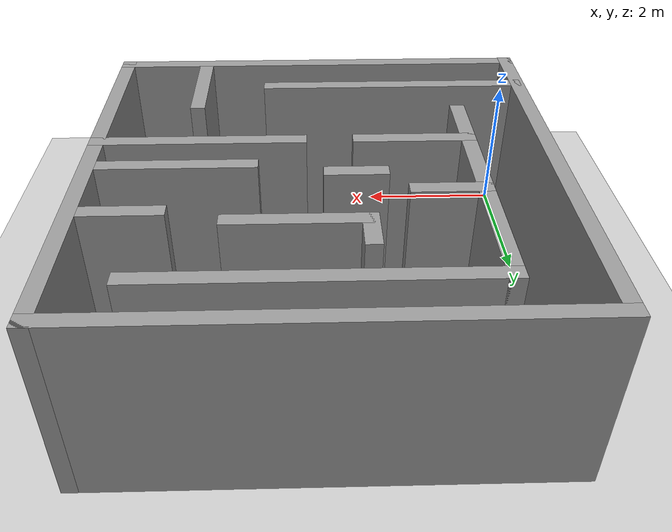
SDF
<sdf version='1.4'>
  <world name='default'>
    <!-- A global light source -->
    <include>
      <uri>model://sun</uri>
    </include>

    <!-- A ground plane -->
    <include>
      <uri>model://ground_plane</uri>
    </include>

    <physics type="ode">
      <real_time_update_rate>1000.0</real_time_update_rate>
      <max_step_size>0.001</max_step_size>
      <real_time_factor>1</real_time_factor>
      <ode>
        <solver>
          <type>quick</type>
          <iters>150</iters>
          <precon_iters>0</precon_iters>
          <sor>1.400000</sor>
          <use_dynamic_moi_rescaling>1</use_dynamic_moi_rescaling>
        </solver>
        <constraints>
          <cfm>0.00001</cfm>
          <erp>0.2</erp>
          <contact_max_correcting_vel>2000.000000</contact_max_correcting_vel>
          <contact_surface_layer>0.01000</contact_surface_layer>
        </constraints>
      </ode>
    </physics>

    <!-- A turtlebot symbol -->
    <include>
      <uri>model://Maze2</uri>
    </include>

    <scene>
      <ambient>0.4 0.4 0.4 1</ambient>
      <background>0.7 0.7 0.7 1</background>
      <shadows>true</shadows>
    </scene>

    <gui fullscreen='0'>
      <camera name='user_camera'>
        <pose>0.8 0.0 12.0 0 1.5708 0</pose>
        <view_controller>orbit</view_controller>
      </camera>
    </gui>
  </world>
</sdf>

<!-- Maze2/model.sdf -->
<sdf version='1.6'>
  <model name='Maze2'>
    <pose frame=''>2.9 2.9 0 0 -0 0</pose>
    <link name='Wall_0'>
      <collision name='Wall_0_Collision'>
        <geometry>
          <box>
            <size>6 0.2 2.5</size>
          </box>
        </geometry>
        <pose frame=''>0 0 1.25 0 -0 0</pose>
      </collision>
      <visual name='Wall_0_Visual'>
        <pose frame=''>0 0 1.25 0 -0 0</pose>
        <geometry>
          <box>
            <size>6 0.2 2.5</size>
          </box>
        </geometry>
        <material>
          <script>
            <uri>file://media/materials/scripts/gazebo.material</uri>
            <name>Gazebo/Grey</name>
          </script>
          <ambient>1 1 1 1</ambient>
        </material>
      </visual>
      <pose frame=''>0 -2.9 0 0 -0 0</pose>
    </link>
    <link name='Wall_1'>
      <collision name='Wall_1_Collision'>
        <geometry>
          <box>
            <size>6 0.2 2.5</size>
          </box>
        </geometry>
        <pose frame=''>0 0 1.25 0 -0 0</pose>
      </collision>
      <visual name='Wall_1_Visual'>
        <pose frame=''>0 0 1.25 0 -0 0</pose>
        <geometry>
          <box>
            <size>6 0.2 2.5</size>
          </box>
        </geometry>
        <material>
          <script>
            <uri>file://media/materials/scripts/gazebo.material</uri>
            <name>Gazebo/Grey</name>
          </script>
          <ambient>1 1 1 1</ambient>
        </material>
      </visual>
      <pose frame=''>2.9 0 0 0 -0 1.5708</pose>
    </link>
    <link name='Wall_16'>
      <collision name='Wall_16_Collision'>
        <geometry>
          <box>
            <size>2.8 0.2 2.5</size>
          </box>
        </geometry>
        <pose frame=''>0 0 1.25 0 -0 0</pose>
      </collision>
      <visual name='Wall_16_Visual'>
        <pose frame=''>0 0 1.25 0 -0 0</pose>
        <geometry>
          <box>
            <size>2.8 0.2 2.5</size>
          </box>
        </geometry>
        <material>
          <script>
            <uri>file://media/materials/scripts/gazebo.material</uri>
            <name>Gazebo/Grey</name>
          </script>
          <ambient>1 1 1 1</ambient>
        </material>
      </visual>
      <pose frame=''>1.6 -0.5 0 0 -0 0</pose>
    </link>
    <link name='Wall_2'>
      <collision name='Wall_2_Collision'>
        <geometry>
          <box>
            <size>6 0.2 2.5</size>
          </box>
        </geometry>
        <pose frame=''>0 0 1.25 0 -0 0</pose>
      </collision>
      <visual name='Wall_2_Visual'>
        <pose frame=''>0 0 1.25 0 -0 0</pose>
        <geometry>
          <box>
            <size>6 0.2 2.5</size>
          </box>
        </geometry>
        <material>
          <script>
            <uri>file://media/materials/scripts/gazebo.material</uri>
            <name>Gazebo/Grey</name>
          </script>
          <ambient>1 1 1 1</ambient>
        </material>
      </visual>
      <pose frame=''>0 2.9 0 0 -0 3.14159</pose>
    </link>
    <link name='Wall_20'>
      <collision name='Wall_20_Collision'>
        <geometry>
          <box>
            <size>1.6 0.2 2.5</size>
          </box>
        </geometry>
        <pose frame=''>0 0 1.25 0 -0 0</pose>
      </collision>
      <visual name='Wall_20_Visual'>
        <pose frame=''>0 0 1.25 0 -0 0</pose>
        <geometry>
          <box>
            <size>1.6 0.2 2.5</size>
          </box>
        </geometry>
        <material>
          <script>
            <uri>file://media/materials/scripts/gazebo.material</uri>
            <name>Gazebo/Grey</name>
          </script>
          <ambient>1 1 1 1</ambient>
        </material>
      </visual>
      <pose frame=''>-1.2 -0.5 0 0 -0 3.14159</pose>
    </link>
    <link name='Wall_22'>
      <collision name='Wall_22_Collision'>
        <geometry>
          <box>
            <size>1 0.2 2.5</size>
          </box>
        </geometry>
        <pose frame=''>0 0 1.25 0 -0 0</pose>
      </collision>
      <visual name='Wall_22_Visual'>
        <pose frame=''>0 0 1.25 0 -0 0</pose>
        <geometry>
          <box>
            <size>1 0.2 2.5</size>
          </box>
        </geometry>
        <material>
          <script>
            <uri>file://media/materials/scripts/gazebo.material</uri>
            <name>Gazebo/Grey</name>
          </script>
          <ambient>1 1 1 1</ambient>
        </material>
      </visual>
      <pose frame=''>2.3 1.1 0 0 -0 0</pose>
    </link>
    <link name='Wall_24'>
      <collision name='Wall_24_Collision'>
        <geometry>
          <box>
            <size>1.8 0.2 2.5</size>
          </box>
        </geometry>
        <pose frame=''>0 0 1.25 0 -0 0</pose>
      </collision>
      <visual name='Wall_24_Visual'>
        <pose frame=''>0 0 1.25 0 -0 0</pose>
        <geometry>
          <box>
            <size>1.8 0.2 2.5</size>
          </box>
        </geometry>
        <material>
          <script>
            <uri>file://media/materials/scripts/gazebo.material</uri>
            <name>Gazebo/Grey</name>
          </script>
          <ambient>1 1 1 1</ambient>
        </material>
      </visual>
      <pose frame=''>0.3 1.3 0 0 -0 3.14159</pose>
    </link>
    <link name='Wall_25'>
      <collision name='Wall_25_Collision'>
        <geometry>
          <box>
            <size>0.6 0.2 2.5</size>
          </box>
        </geometry>
        <pose frame=''>0 0 1.25 0 -0 0</pose>
      </collision>
      <visual name='Wall_25_Visual'>
        <pose frame=''>0 0 1.25 0 -0 0</pose>
        <geometry>
          <box>
            <size>0.6 0.2 2.5</size>
          </box>
        </geometry>
        <material>
          <script>
            <uri>file://media/materials/scripts/gazebo.material</uri>
            <name>Gazebo/Grey</name>
          </script>
          <ambient>1 1 1 1</ambient>
        </material>
      </visual>
      <pose frame=''>-0.5 1.5 0 0 -0 1.5708</pose>
    </link>
    <link name='Wall_27'>
      <collision name='Wall_27_Collision'>
        <geometry>
          <box>
            <size>1 0.2 2.5</size>
          </box>
        </geometry>
        <pose frame=''>0 0 1.25 0 -0 0</pose>
      </collision>
      <visual name='Wall_27_Visual'>
        <pose frame=''>0 0 1.25 0 -0 0</pose>
        <geometry>
          <box>
            <size>1 0.2 2.5</size>
          </box>
        </geometry>
        <material>
          <script>
            <uri>file://media/materials/scripts/gazebo.material</uri>
            <name>Gazebo/Grey</name>
          </script>
          <ambient>1 1 1 1</ambient>
        </material>
      </visual>
      <pose frame=''>-1.5 0.7 0 0 -0 0</pose>
    </link>
    <link name='Wall_29'>
      <collision name='Wall_29_Collision'>
        <geometry>
          <box>
            <size>0.8 0.2 2.5</size>
          </box>
        </geometry>
        <pose frame=''>0 0 1.25 0 -0 0</pose>
      </collision>
      <visual name='Wall_29_Visual'>
        <pose frame=''>0 0 1.25 0 -0 0</pose>
        <geometry>
          <box>
            <size>0.8 0.2 2.5</size>
          </box>
        </geometry>
        <material>
          <script>
            <uri>file://media/materials/scripts/gazebo.material</uri>
            <name>Gazebo/Grey</name>
          </script>
          <ambient>1 1 1 1</ambient>
        </material>
      </visual>
      <pose frame=''>-0.4 0.3 0 0 -0 3.14159</pose>
    </link>
    <link name='Wall_3'>
      <collision name='Wall_3_Collision'>
        <geometry>
          <box>
            <size>6 0.2 2.5</size>
          </box>
        </geometry>
        <pose frame=''>0 0 1.25 0 -0 0</pose>
      </collision>
      <visual name='Wall_3_Visual'>
        <pose frame=''>0 0 1.25 0 -0 0</pose>
        <geometry>
          <box>
            <size>6 0.2 2.5</size>
          </box>
        </geometry>
        <material>
          <script>
            <uri>file://media/materials/scripts/gazebo.material</uri>
            <name>Gazebo/Grey</name>
          </script>
          <ambient>1 1 1 1</ambient>
        </material>
      </visual>
      <pose frame=''>-2.9 0 0 0 0 -1.5708</pose>
    </link>
    <link name='Wall_31'>
      <collision name='Wall_31_Collision'>
        <geometry>
          <box>
            <size>2 0.2 2.5</size>
          </box>
        </geometry>
        <pose frame=''>0 0 1.25 0 -0 0</pose>
      </collision>
      <visual name='Wall_31_Visual'>
        <pose frame=''>0 0 1.25 0 -0 0</pose>
        <geometry>
          <box>
            <size>2 0.2 2.5</size>
          </box>
        </geometry>
        <material>
          <script>
            <uri>file://media/materials/scripts/gazebo.material</uri>
            <name>Gazebo/Grey</name>
          </script>
          <ambient>1 1 1 1</ambient>
        </material>
      </visual>
      <pose frame=''>1.8 0.1 0 0 -0 0</pose>
    </link>
    <link name='Wall_33'>
      <collision name='Wall_33_Collision'>
        <geometry>
          <box>
            <size>1.4 0.2 2.5</size>
          </box>
        </geometry>
        <pose frame=''>0 0 1.25 0 -0 0</pose>
      </collision>
      <visual name='Wall_33_Visual'>
        <pose frame=''>0 0 1.25 0 -0 0</pose>
        <geometry>
          <box>
            <size>1.4 0.2 2.5</size>
          </box>
        </geometry>
        <material>
          <script>
            <uri>file://media/materials/scripts/gazebo.material</uri>
            <name>Gazebo/Grey</name>
          </script>
          <ambient>1 1 1 1</ambient>
        </material>
      </visual>
      <pose frame=''>1.7 -2.1 0 0 -0 1.5708</pose>
    </link>
    <link name='Wall_5'>
      <collision name='Wall_5_Collision'>
        <geometry>
          <box>
            <size>3.75 0.2 2.5</size>
          </box>
        </geometry>
        <pose frame=''>0 0 1.25 0 -0 0</pose>
      </collision>
      <visual name='Wall_5_Visual'>
        <pose frame=''>0 0 1.25 0 -0 0</pose>
        <geometry>
          <box>
            <size>3.75 0.2 2.5</size>
          </box>
        </geometry>
        <material>
          <script>
            <uri>file://media/materials/scripts/gazebo.material</uri>
            <name>Gazebo/Grey</name>
          </script>
          <ambient>1 1 1 1</ambient>
        </material>
      </visual>
      <pose frame=''>-1.075 -2.1 0 0 -0 0</pose>
    </link>
    <link name='Wall_7'>
      <collision name='Wall_7_Collision'>
        <geometry>
          <box>
            <size>3.8 0.2 2.5</size>
          </box>
        </geometry>
        <pose frame=''>0 0 1.25 0 -0 0</pose>
      </collision>
      <visual name='Wall_7_Visual'>
        <pose frame=''>0 0 1.25 0 -0 0</pose>
        <geometry>
          <box>
            <size>3.8 0.2 2.5</size>
          </box>
        </geometry>
        <material>
          <script>
            <uri>file://media/materials/scripts/gazebo.material</uri>
            <name>Gazebo/Grey</name>
          </script>
          <ambient>1 1 1 1</ambient>
        </material>
      </visual>
      <pose frame=''>-1.9 0.5 0 0 -0 1.5708</pose>
    </link>
    <link name='Wall_8'>
      <collision name='Wall_8_Collision'>
        <geometry>
          <box>
            <size>4.2 0.2 2.5</size>
          </box>
        </geometry>
        <pose frame=''>0 0 1.25 0 -0 0</pose>
      </collision>
      <visual name='Wall_8_Visual'>
        <pose frame=''>0 0 1.25 0 -0 0</pose>
        <geometry>
          <box>
            <size>4.2 0.2 2.5</size>
          </box>
        </geometry>
        <material>
          <script>
            <uri>file://media/materials/scripts/gazebo.material</uri>
            <name>Gazebo/Grey</name>
          </script>
          <ambient>1 1 1 1</ambient>
        </material>
      </visual>
      <pose frame=''>0.1 2.3 0 0 -0 0</pose>
    </link>
    <static>1</static>
  </model>
</sdf>
